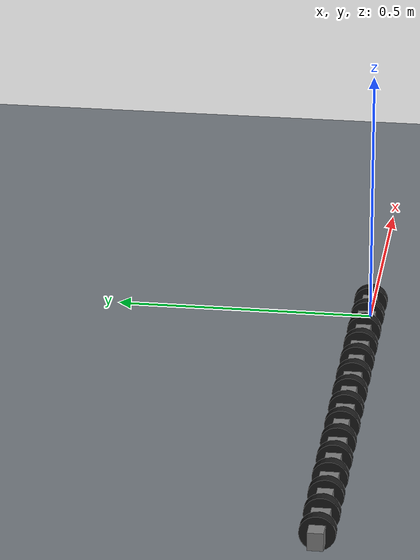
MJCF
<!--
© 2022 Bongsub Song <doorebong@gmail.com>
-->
<!-- All right reserved -->
 <!-- Description : BRM snake robot Mujoco simulation xml -->

<mujoco model="snake-dgist">

    <compiler inertiafromgeom="true" angle="degree" convexhull="false"/>

    <option timestep="0.01" iterations="50" tolerance="1e-10" solver="Newton" jacobian="dense" cone="elliptic"/>

     <size nconmax="5000" njmax="2000" nstack="50000"/>

    <visual>
        <map force="0.1" zfar="30"/>
        <rgba haze="0.15 0.25 0.35 1"/>
        <quality shadowsize="2048"/>
        <global offwidth="800" offheight="800"/>
    </visual>

    <asset>
        <texture type="skybox" builtin="gradient" rgb1="0.5 0.7 0.9" rgb2="0.1 0.1 0.1" width="512" height="512"/>

        <texture name="texplane" type="2d" builtin="checker" rgb1=".8 .8 .8" rgb2=".1 0.15 0.2" width="512" height="512" mark="cross" markrgb=".8 .8 .8"/>

        <texture name="texgeom" type="cube" builtin="flat" mark="cross" width="127" height="1278"
            rgb1="0.8 0.6 0.4" rgb2="0.8 0.6 0.4" markrgb="1 1 1" random="0.01"/>

        <material name="matplane" reflectance="0.3" texture="texplane" texrepeat="2 2" texuniform="true"/>

        <material name="matgeom" texture="texgeom" texuniform="true" rgba="0.8 0.6 .4 1"/>

    </asset>

    <worldbody>

        <geom name="floor" pos="0 0 0" size="0 0 .25" type="plane" material="matplane" condim="3" friction="0.55 0.01 0.01"/>

        <light directional="false" diffuse="1 1 1" specular="0 0 0" pos="0 0 15" dir="0 0 -1" castshadow="false"/>

    <!-- Snake -->
        <body name="head" pos="0 0 0.033">
            <freejoint name="root"/>
            <geom type="cylinder" size="0.0325 0.01" euler="0 -90 0" rgba="0.1 0.1 0.1 1" mass="0.04" condim="6" friction="0.55 0.01 0.01"/>
            <geom type="box" size="0.017 0.01425 0.02525" euler="0 -90 0" pos="-0.01525 0 0" mass="0.1"/>

            <body name="link1" pos="-0.0685 0 0">
                <joint name="joint1" type="hinge" pos="0.02925 0 0" axis="0 1 0" limited="true" range="-90 90" damping="0.6" armature="0.01" />
                <geom type="cylinder" size="0.0325 0.01" euler="0 -90 0" rgba="0.1 0.1 0.1 1" mass="0.04" condim="6" friction="0.55 0.01 0.01"/>
                <geom type="box" size="0.01425 0.017 0.02525" euler="0 -90 0" pos="-0.01525 0 0" mass="0.1"/>

                <body name="link2" pos="-0.0685 0 0">
                    <joint name="joint2" type="hinge" pos="0.02925 0 0" axis="0 0 1" limited="true" range="-90 90" damping="0.6" armature="0.01" />
                    <geom type="cylinder" size="0.0325 0.01" euler="0 -90 0" rgba="0.1 0.1 0.1 1" mass="0.04" condim="6" friction="0.55 0.01 0.01"/>
                    <geom type="box" size="0.017 0.01425 0.02525" euler="0 -90 0" pos="-0.01525 0 0" mass="0.1"/>

                    <body name="link3" pos="-0.0685 0 0">
                        <joint name="joint3" type="hinge" pos="-0.02925 0 0" axis="0 1 0" limited="true" range="-90 90" damping="0.6" armature="0.01" />
                        <geom type="cylinder" size="0.0325 0.01" euler="0 -90 0" rgba="0.1 0.1 0.1 1" mass="0.04" condim="6" friction="0.55 0.01 0.01"/>
                        <geom type="box" size="0.01425 0.017 0.02525" euler="0 -90 0" pos="-0.01525 0 0" mass="0.1"/>

                        <body name="link4" pos="-0.0685 0 0">
                            <joint name="joint4" type="hinge" pos="0.02925 0 0" axis="0 0 1" limited="true" range="-90 90" damping="0.6" armature="0.01" />
                            <geom type="cylinder" size="0.0325 0.01" euler="0 -90 0" rgba="0.1 0.1 0.1 1" mass="0.04" condim="6" friction="0.55 0.01 0.01"/>
                            <geom type="box" size="0.017 0.01425 0.02525" euler="0 -90 0" pos="-0.01525 0 0" mass="0.1"/>

                            <body name="link5" pos="-0.0685 0 0">
                                <joint name="joint5" type="hinge" pos="0.02925 0 0" axis="0 1 0" limited="true" range="-90 90" damping="0.6" armature="0.01" />
                                <geom type="cylinder" size="0.0325 0.01" euler="0 -90 0" rgba="0.1 0.1 0.1 1" mass="0.04" condim="6" friction="0.55 0.01 0.01"/>
                                <geom type="box" size="0.01425 0.017 0.02525" euler="0 -90 0" pos="-0.01525 0 0" mass="0.1"/>

                                <body name="link6" pos="-0.0685 0 0">
                                    <joint name="joint6" type="hinge" pos="0.02925 0 0" axis="0 0 1" limited="true" range="-90 90" damping="0.6" armature="0.01" />
                                    <geom type="cylinder" size="0.0325 0.01" euler="0 -90 0" rgba="0.1 0.1 0.1 1" mass="0.04" condim="6" friction="0.55 0.01 0.01"/>
                                    <geom type="box" size="0.017 0.01425 0.02525" euler="0 -90 0" pos="-0.01525 0 0" mass="0.1"/>

                                    <body name="link7" pos="-0.0685 0 0">
                                        <joint name="joint7" type="hinge" pos="0.02925 0 0" axis="0 1 0" limited="true" range="-90 90" damping="0.6" armature="0.01" />
                                        <geom type="cylinder" size="0.0325 0.01" euler="0 -90 0" rgba="0.1 0.1 0.1 1" mass="0.04" condim="6" friction="0.55 0.01 0.01"/>
                                        <geom type="box" size="0.01425 0.017 0.02525" euler="0 -90 0" pos="-0.01525 0 0" mass="0.1"/>

                                        <body name="link8" pos="-0.0685 0 0">
                                            <joint name="joint8" type="hinge" pos="0.02925 0 0" axis="0 0 1" limited="true" range="-90 90" damping="0.6" armature="0.01" />
                                            <geom type="cylinder" size="0.0325 0.01" euler="0 -90 0" rgba="0.1 0.1 0.1 1" mass="0.04" condim="6" friction="0.55 0.01 0.01"/>
                                            <geom type="box" size="0.017 0.01425 0.02525" euler="0 -90 0" pos="-0.01525 0 0" mass="0.1"/>

                                            <body name="link9" pos="-0.0685 0 0">
                                                <joint name="joint9" type="hinge" pos="0.02925 0 0" axis="0 1 0" limited="true" range="-90 90" damping="0.6" armature="0.01" />
                                                <geom type="cylinder" size="0.0325 0.01" euler="0 -90 0" rgba="0.1 0.1 0.1 1" mass="0.04" condim="6" friction="0.55 0.01 0.01"/>
                                                <geom type="box" size="0.01425 0.017 0.02525" euler="0 -90 0" pos="-0.01525 0 0" mass="0.1"/>

                                                <body name="link10" pos="-0.0685 0 0">
                                                    <joint name="joint10" type="hinge" pos="0.02925 0 0" axis="0 0 1" limited="true" range="-90 90" damping="0.6" armature="0.01" />
                                                    <geom type="cylinder" size="0.0325 0.01" euler="0 -90 0" rgba="0.1 0.1 0.1 1" mass="0.04" condim="6" friction="0.55 0.01 0.01"/>
                                                    <geom type="box" size="0.017 0.01425 0.02525" euler="0 -90 0" pos="-0.01525 0 0" mass="0.1"/>

                                                    <body name="link11" pos="-0.0685 0 0">
                                                        <joint name="joint11" type="hinge" pos="0.02925 0 0" axis="0 1 0" limited="true" range="-90 90" damping="0.6" armature="0.01" />
                                                        <geom type="cylinder" size="0.0325 0.01" euler="0 -90 0" rgba="0.1 0.1 0.1 1" mass="0.04" condim="6" friction="0.55 0.01 0.01"/>
                                                        <geom type="box" size="0.01425 0.017 0.02525" euler="0 -90 0" pos="-0.01525 0 0" mass="0.1"/>

                                                        <body name="link12" pos="-0.0685 0 0">
                                                            <joint name="joint12" type="hinge" pos="0.02925 0 0" axis="0 0 1" limited="true" range="-90 90" damping="0.6" armature="0.01" />
                                                            <geom type="cylinder" size="0.0325 0.01" euler="0 -90 0" rgba="0.1 0.1 0.1 1" mass="0.04" condim="6" friction="0.55 0.01 0.01"/>
                                                            <geom type="box" size="0.017 0.01425 0.02525" euler="0 -90 0" pos="-0.01525 0 0" mass="0.1"/>

                                                            <body name="link13" pos="-0.0685 0 0">
                                                                <joint name="joint13" type="hinge" pos="0.02925 0 0" axis="0 1 0" limited="true" range="-90 90" damping="0.6" armature="0.01" />
                                                                <geom type="cylinder" size="0.0325 0.01" euler="0 -90 0" rgba="0.1 0.1 0.1 1" mass="0.04" condim="6" friction="0.55 0.01 0.01"/>
                                                                <geom type="box" size="0.01425 0.017 0.02525" euler="0 -90 0" pos="-0.01525 0 0" mass="0.1"/>

                                                                <body name="tail" pos="-0.0685 0 0">
                                                                    <joint name="joint14" type="hinge" pos="0.02925 0 0" axis="0 0 1" limited="true" range="-90 90" damping="0.6" armature="0.01" />
                                                                    <geom type="cylinder" size="0.0325 0.01" euler="0 -90 0" rgba="0.1 0.1 0.1 1" mass="0.04" condim="6" friction="0.55 0.01 0.01"/>
                                                                    <geom type="box" size="0.017 0.01425 0.02525" euler="0 -90 0" pos="-0.01525 0 0" mass="0.1"/>
                                                                </body>
                                                            </body>
                                                        </body>
                                                    </body>
                                                </body>
                                            </body>
                                        </body>
                                    </body>
                                </body>
                            </body>
                        </body>
                    </body>
                </body>
            </body>
        </body>
    </worldbody>

    <actuator>
        <position name="servo_1" ctrllimited="true" ctrlrange="-1.5708 1.5708" forcelimited="true" forcerange="-3.0 3.0" gear="1" joint="joint1" kp="70"/>
        <position name="servo_2" ctrllimited="true" ctrlrange="-1.5708 1.5708" forcelimited="true" forcerange="-3.0 3.0" gear="1" joint="joint2" kp="70"/>
        <position name="servo_3" ctrllimited="true" ctrlrange="-1.5708 1.5708" forcelimited="true" forcerange="-3.0 3.0" gear="1" joint="joint3" kp="70"/>
        <position name="servo_4" ctrllimited="true" ctrlrange="-1.5708 1.5708" forcelimited="true" forcerange="-3.0 3.0" gear="1" joint="joint4" kp="70"/>
        <position name="servo_5" ctrllimited="true" ctrlrange="-1.5708 1.5708" forcelimited="true" forcerange="-3.0 3.0" gear="1" joint="joint5" kp="70"/>
        <position name="servo_6" ctrllimited="true" ctrlrange="-1.5708 1.5708" forcelimited="true" forcerange="-3.0 3.0" gear="1" joint="joint6" kp="70"/>
        <position name="servo_7" ctrllimited="true" ctrlrange="-1.5708 1.5708" forcelimited="true" forcerange="-3.0 3.0" gear="1" joint="joint7" kp="70"/>
        <position name="servo_8" ctrllimited="true" ctrlrange="-1.5708 1.5708" forcelimited="true" forcerange="-3.0 3.0" gear="1" joint="joint8" kp="70"/>
        <position name="servo_9" ctrllimited="true" ctrlrange="-1.5708 1.5708" forcelimited="true" forcerange="-3.0 3.0" gear="1" joint="joint9" kp="70"/>
        <position name="servo_10" ctrllimited="true" ctrlrange="-1.5708 1.5708" forcelimited="true" forcerange="-3.0 3.0" gear="1" joint="joint10" kp="70"/>
        <position name="servo_11" ctrllimited="true" ctrlrange="-1.5708 1.5708" forcelimited="true" forcerange="-3.0 3.0" gear="1" joint="joint11" kp="70"/>
        <position name="servo_12" ctrllimited="true" ctrlrange="-1.5708 1.5708" forcelimited="true" forcerange="-3.0 3.0" gear="1" joint="joint12" kp="70"/>
        <position name="servo_13" ctrllimited="true" ctrlrange="-1.5708 1.5708" forcelimited="true" forcerange="-3.0 3.0" gear="1" joint="joint13" kp="70"/>
        <position name="servo_14" ctrllimited="true" ctrlrange="-1.5708 1.5708" forcelimited="true" forcerange="-3.0 3.0" gear="1" joint="joint14" kp="70"/>
    </actuator>
</mujoco>
